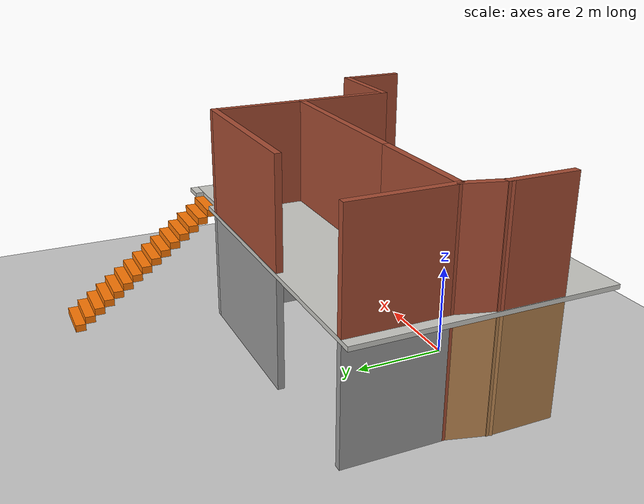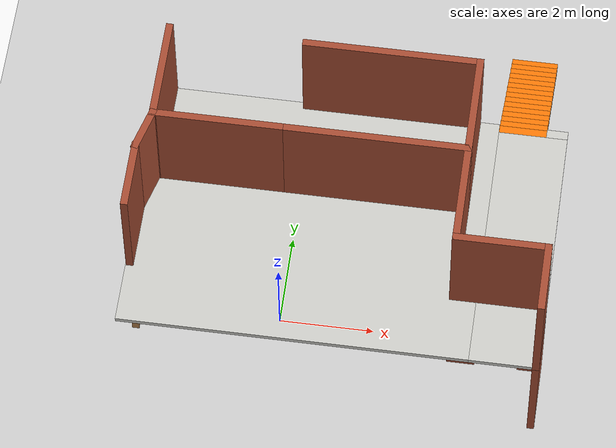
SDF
<sdf version="1.6">
 <world name="default">
  <light name="sun" type="directional">
   <pose>0 0 10 0 -0 0</pose>
   <diffuse>0.8 0.8 0.8 1</diffuse>
   <specular>0.2 0.2 0.2 1</specular>
   <attenuation>
    <range>1000</range>
    <constant>0.9</constant>
    <linear>0.01</linear>
    <quadratic>0.001</quadratic>
   </attenuation>
   <direction>-0.5 0.1 -0.9</direction>
  </light>
  <model name="ground_plane">
   <static>1</static>
   <link name="link">
    <collision name="collision">
     <geometry><plane><normal>0 0 1</normal><size>100 100</size></plane></geometry>
     <surface>
      <contact><collide_bitmask>65535</collide_bitmask></contact>
      <friction><ode><mu>100</mu><mu2>50</mu2></ode></friction>
     </surface>
    </collision>
    <visual name="visual">
     <cast_shadows>0</cast_shadows>
     <geometry><plane><normal>0 0 1</normal><size>100 100</size></plane></geometry>
     <material>
      <script><uri>file://media/materials/scripts/gazebo.material</uri><name>Gazebo/Grey</name></script>
     </material>
    </visual>
   </link>
  </model>
  <gravity>0 0 -9.8</gravity>
  <magnetic_field>6e-06 2.3e-05 -4.2e-05</magnetic_field>
  <atmosphere type="adiabatic"/>
  <physics name="default_physics" default="0" type="ode">
   <max_step_size>0.001</max_step_size>
   <real_time_factor>1</real_time_factor>
   <real_time_update_rate>1000</real_time_update_rate>
  </physics>
  <scene><ambient>0.4 0.4 0.4 1</ambient><background>0.7 0.7 0.7 1</background><shadows>1</shadows></scene>
  <audio><device>default</device></audio>
  <spherical_coordinates>
   <surface_model>EARTH_WGS84</surface_model>
   <latitude_deg>0</latitude_deg>
   <longitude_deg>0</longitude_deg>
   <elevation>0</elevation>
   <heading_deg>0</heading_deg>
  </spherical_coordinates>
  <model name="myflat">
   <pose>1.2576 2.6526 0 0 -0 0</pose>
   <link name="Floor_0">
    <pose>-0 -1.65392 2.5 0 -0 0</pose>
    <visual name="Floor_0_Visual_0">
     <pose>-0.722437 0 0.05 0 -0 0</pose>
     <geometry><box><size>7.24198 5.70822 0.1</size></box></geometry>
     <material>
      <script><uri>file://media/materials/scripts/gazebo.material</uri><name>Gazebo/CeilingTiled</name></script>
      <ambient>1 1 1 1</ambient>
     </material>
     <meta><layer>1</layer></meta>
    </visual>
    <collision name="Floor_0_Collision_0">
     <geometry><box><size>7.24198 5.70822 0.1</size></box></geometry>
     <pose>-0.722437 0 0.05 0 -0 0</pose>
    </collision>
    <visual name="Floor_0_Visual_1">
     <pose>3.62099 -0.096078 0.05 0 -0 0</pose>
     <geometry><box><size>1.44487 5.51606 0.1</size></box></geometry>
     <material>
      <script><uri>file://media/materials/scripts/gazebo.material</uri><name>Gazebo/CeilingTiled</name></script>
      <ambient>1 1 1 1</ambient>
     </material>
     <meta><layer>1</layer></meta>
    </visual>
    <collision name="Floor_0_Collision_1">
     <geometry><box><size>1.44487 5.51606 0.1</size></box></geometry>
     <pose>3.62099 -0.096078 0.05 0 -0 0</pose>
    </collision>
    <visual name="Floor_0_Visual_2">
     <pose>4.12099 2.75803 0.05 0 -0 0</pose>
     <geometry><box><size>0.444875 0.192156 0.1</size></box></geometry>
     <material>
      <script><uri>file://media/materials/scripts/gazebo.material</uri><name>Gazebo/CeilingTiled</name></script>
      <ambient>1 1 1 1</ambient>
     </material>
     <meta><layer>1</layer></meta>
    </visual>
    <collision name="Floor_0_Collision_2">
     <geometry><box><size>0.444875 0.192156 0.1</size></box></geometry>
     <pose>4.12099 2.75803 0.05 0 -0 0</pose>
    </collision>
   </link>
   <link name="Stairs_2">
    <visual name="Stairs_2_Visual_0">
     <pose>3.39855 4.39136 0.083333 0 -0 0</pose>
     <geometry><box><size>1 0.233333 0.166667</size></box></geometry>
     <material>
      <script><uri>file://media/materials/scripts/gazebo.material</uri><name>Gazebo/Grey</name></script>
      <ambient>0.996078 0.47451 0.0196078 1</ambient>
     </material>
     <meta><layer>0</layer></meta>
    </visual>
    <collision name="Stairs_2_Collision_0">
     <geometry><box><size>1 0.233333 0.166667</size></box></geometry>
     <pose>3.39855 4.39136 0.083333 0 -0 0</pose>
    </collision>
    <visual name="Stairs_2_Visual_1">
     <pose>3.39855 4.15803 0.25 0 -0 0</pose>
     <geometry><box><size>1 0.233333 0.166667</size></box></geometry>
     <material>
      <script><uri>file://media/materials/scripts/gazebo.material</uri><name>Gazebo/Grey</name></script>
      <ambient>0.996078 0.47451 0.0196078 1</ambient>
     </material>
     <meta><layer>0</layer></meta>
    </visual>
    <collision name="Stairs_2_Collision_1">
     <geometry><box><size>1 0.233333 0.166667</size></box></geometry>
     <pose>3.39855 4.15803 0.25 0 -0 0</pose>
    </collision>
    <visual name="Stairs_2_Visual_2">
     <pose>3.39855 3.9247 0.416667 0 -0 0</pose>
     <geometry><box><size>1 0.233333 0.166667</size></box></geometry>
     <material>
      <script><uri>file://media/materials/scripts/gazebo.material</uri><name>Gazebo/Grey</name></script>
      <ambient>0.996078 0.47451 0.0196078 1</ambient>
     </material>
     <meta><layer>0</layer></meta>
    </visual>
    <collision name="Stairs_2_Collision_2">
     <geometry><box><size>1 0.233333 0.166667</size></box></geometry>
     <pose>3.39855 3.9247 0.416667 0 -0 0</pose>
    </collision>
    <visual name="Stairs_2_Visual_3">
     <pose>3.39855 3.69136 0.583333 0 -0 0</pose>
     <geometry><box><size>1 0.233333 0.166667</size></box></geometry>
     <material>
      <script><uri>file://media/materials/scripts/gazebo.material</uri><name>Gazebo/Grey</name></script>
      <ambient>0.996078 0.47451 0.0196078 1</ambient>
     </material>
     <meta><layer>0</layer></meta>
    </visual>
    <collision name="Stairs_2_Collision_3">
     <geometry><box><size>1 0.233333 0.166667</size></box></geometry>
     <pose>3.39855 3.69136 0.583333 0 -0 0</pose>
    </collision>
    <visual name="Stairs_2_Visual_4">
     <pose>3.39855 3.45803 0.75 0 -0 0</pose>
     <geometry><box><size>1 0.233333 0.166667</size></box></geometry>
     <material>
      <script><uri>file://media/materials/scripts/gazebo.material</uri><name>Gazebo/Grey</name></script>
      <ambient>0.996078 0.47451 0.0196078 1</ambient>
     </material>
     <meta><layer>0</layer></meta>
    </visual>
    <collision name="Stairs_2_Collision_4">
     <geometry><box><size>1 0.233333 0.166667</size></box></geometry>
     <pose>3.39855 3.45803 0.75 0 -0 0</pose>
    </collision>
    <visual name="Stairs_2_Visual_5">
     <pose>3.39855 3.2247 0.916667 0 -0 0</pose>
     <geometry><box><size>1 0.233333 0.166667</size></box></geometry>
     <material>
      <script><uri>file://media/materials/scripts/gazebo.material</uri><name>Gazebo/Grey</name></script>
      <ambient>0.996078 0.47451 0.0196078 1</ambient>
     </material>
     <meta><layer>0</layer></meta>
    </visual>
    <collision name="Stairs_2_Collision_5">
     <geometry><box><size>1 0.233333 0.166667</size></box></geometry>
     <pose>3.39855 3.2247 0.916667 0 -0 0</pose>
    </collision>
    <visual name="Stairs_2_Visual_6">
     <pose>3.39855 2.99137 1.08333 0 -0 0</pose>
     <geometry><box><size>1 0.233333 0.166667</size></box></geometry>
     <material>
      <script><uri>file://media/materials/scripts/gazebo.material</uri><name>Gazebo/Grey</name></script>
      <ambient>0.996078 0.47451 0.0196078 1</ambient>
     </material>
     <meta><layer>0</layer></meta>
    </visual>
    <collision name="Stairs_2_Collision_6">
     <geometry><box><size>1 0.233333 0.166667</size></box></geometry>
     <pose>3.39855 2.99137 1.08333 0 -0 0</pose>
    </collision>
    <visual name="Stairs_2_Visual_7">
     <pose>3.39855 2.75803 1.25 0 -0 0</pose>
     <geometry><box><size>1 0.233333 0.166667</size></box></geometry>
     <material>
      <script><uri>file://media/materials/scripts/gazebo.material</uri><name>Gazebo/Grey</name></script>
      <ambient>0.996078 0.47451 0.0196078 1</ambient>
     </material>
     <meta><layer>0</layer></meta>
    </visual>
    <collision name="Stairs_2_Collision_7">
     <geometry><box><size>1 0.233333 0.166667</size></box></geometry>
     <pose>3.39855 2.75803 1.25 0 -0 0</pose>
    </collision>
    <visual name="Stairs_2_Visual_8">
     <pose>3.39855 2.5247 1.41667 0 -0 0</pose>
     <geometry><box><size>1 0.233333 0.166667</size></box></geometry>
     <material>
      <script><uri>file://media/materials/scripts/gazebo.material</uri><name>Gazebo/Grey</name></script>
      <ambient>0.996078 0.47451 0.0196078 1</ambient>
     </material>
     <meta><layer>0</layer></meta>
    </visual>
    <collision name="Stairs_2_Collision_8">
     <geometry><box><size>1 0.233333 0.166667</size></box></geometry>
     <pose>3.39855 2.5247 1.41667 0 -0 0</pose>
    </collision>
    <visual name="Stairs_2_Visual_9">
     <pose>3.39855 2.29136 1.58333 0 -0 0</pose>
     <geometry><box><size>1 0.233333 0.166667</size></box></geometry>
     <material>
      <script><uri>file://media/materials/scripts/gazebo.material</uri><name>Gazebo/Grey</name></script>
      <ambient>0.996078 0.47451 0.0196078 1</ambient>
     </material>
     <meta><layer>0</layer></meta>
    </visual>
    <collision name="Stairs_2_Collision_9">
     <geometry><box><size>1 0.233333 0.166667</size></box></geometry>
     <pose>3.39855 2.29136 1.58333 0 -0 0</pose>
    </collision>
    <visual name="Stairs_2_Visual_10">
     <pose>3.39855 2.05803 1.75 0 -0 0</pose>
     <geometry><box><size>1 0.233333 0.166667</size></box></geometry>
     <material>
      <script><uri>file://media/materials/scripts/gazebo.material</uri><name>Gazebo/Grey</name></script>
      <ambient>0.996078 0.47451 0.0196078 1</ambient>
     </material>
     <meta><layer>0</layer></meta>
    </visual>
    <collision name="Stairs_2_Collision_10">
     <geometry><box><size>1 0.233333 0.166667</size></box></geometry>
     <pose>3.39855 2.05803 1.75 0 -0 0</pose>
    </collision>
    <visual name="Stairs_2_Visual_11">
     <pose>3.39855 1.8247 1.91667 0 -0 0</pose>
     <geometry><box><size>1 0.233333 0.166667</size></box></geometry>
     <material>
      <script><uri>file://media/materials/scripts/gazebo.material</uri><name>Gazebo/Grey</name></script>
      <ambient>0.996078 0.47451 0.0196078 1</ambient>
     </material>
     <meta><layer>0</layer></meta>
    </visual>
    <collision name="Stairs_2_Collision_11">
     <geometry><box><size>1 0.233333 0.166667</size></box></geometry>
     <pose>3.39855 1.8247 1.91667 0 -0 0</pose>
    </collision>
    <visual name="Stairs_2_Visual_12">
     <pose>3.39855 1.59136 2.08333 0 -0 0</pose>
     <geometry><box><size>1 0.233333 0.166667</size></box></geometry>
     <material>
      <script><uri>file://media/materials/scripts/gazebo.material</uri><name>Gazebo/Grey</name></script>
      <ambient>0.996078 0.47451 0.0196078 1</ambient>
     </material>
     <meta><layer>0</layer></meta>
    </visual>
    <collision name="Stairs_2_Collision_12">
     <geometry><box><size>1 0.233333 0.166667</size></box></geometry>
     <pose>3.39855 1.59136 2.08333 0 -0 0</pose>
    </collision>
    <visual name="Stairs_2_Visual_13">
     <pose>3.39855 1.35803 2.25 0 -0 0</pose>
     <geometry><box><size>1 0.233333 0.166667</size></box></geometry>
     <material>
      <script><uri>file://media/materials/scripts/gazebo.material</uri><name>Gazebo/Grey</name></script>
      <ambient>0.996078 0.47451 0.0196078 1</ambient>
     </material>
     <meta><layer>0</layer></meta>
    </visual>
    <collision name="Stairs_2_Collision_13">
     <geometry><box><size>1 0.233333 0.166667</size></box></geometry>
     <pose>3.39855 1.35803 2.25 0 -0 0</pose>
    </collision>
    <visual name="Stairs_2_Visual_14">
     <pose>3.39855 1.1247 2.41667 0 -0 0</pose>
     <geometry><box><size>1 0.233333 0.166667</size></box></geometry>
     <material>
      <script><uri>file://media/materials/scripts/gazebo.material</uri><name>Gazebo/Grey</name></script>
      <ambient>0.996078 0.47451 0.0196078 1</ambient>
     </material>
     <meta><layer>0</layer></meta>
    </visual>
    <collision name="Stairs_2_Collision_14">
     <geometry><box><size>1 0.233333 0.166667</size></box></geometry>
     <pose>3.39855 1.1247 2.41667 0 -0 0</pose>
    </collision>
   </link>
   <link name="Wall_0">
    <collision name="Wall_0_Collision">
     <geometry><box><size>1.5 0.15 2.5</size></box></geometry>
     <pose>0 0 1.25 0 -0 0</pose>
    </collision>
    <visual name="Wall_0_Visual">
     <pose>0 0 1.25 0 -0 0</pose>
     <geometry><box><size>1.5 0.15 2.5</size></box></geometry>
     <material>
      <script><uri>file://media/materials/scripts/gazebo.material</uri><name>Gazebo/Wood</name></script>
      <ambient>1 1 1 1</ambient>
     </material>
     <meta><layer>0</layer></meta>
    </visual>
    <pose>-4.25157 -2.47907 0 0 -0 1.5708</pose>
   </link>
   <link name="Wall_1">
    <collision name="Wall_1_Collision">
     <geometry><box><size>1 0.15 2.5</size></box></geometry>
     <pose>0 0 1.25 0 -0 0</pose>
    </collision>
    <visual name="Wall_1_Visual">
     <pose>0 0 1.25 0 -0 0</pose>
     <geometry><box><size>1 0.15 2.5</size></box></geometry>
     <material>
      <script><uri>file://media/materials/scripts/gazebo.material</uri><name>Gazebo/Wood</name></script>
      <ambient>1 1 1 1</ambient>
     </material>
     <meta><layer>0</layer></meta>
    </visual>
    <pose>-4.14157 -1.39355 0 0 -0 1.309</pose>
   </link>
   <link name="Wall_11">
    <collision name="Wall_11_Collision">
     <geometry><box><size>2.25805 0.15 2.5</size></box></geometry>
     <pose>0 0 1.25 0 -0 0</pose>
    </collision>
    <visual name="Wall_11_Visual">
     <pose>0 0 1.25 0 -0 0</pose>
     <geometry><box><size>2.25805 0.15 2.5</size></box></geometry>
     <material>
      <script><uri>file://media/materials/scripts/gazebo.material</uri><name>Gazebo/Grey</name></script>
      <ambient>1 1 1 1</ambient>
     </material>
     <meta><layer>0</layer></meta>
    </visual>
    <pose>-4.02905 0.070988 0 0 -0 -1.57319</pose>
   </link>
   <link name="Wall_13">
    <collision name="Wall_13_Collision">
     <geometry><box><size>1.5 0.15 2.5</size></box></geometry>
     <pose>0 0 1.25 0 -0 0</pose>
    </collision>
    <visual name="Wall_13_Visual">
     <pose>0 0 1.25 0 -0 0</pose>
     <geometry><box><size>1.5 0.15 2.5</size></box></geometry>
     <material>
      <script><uri>file://media/materials/scripts/gazebo.material</uri><name>Gazebo/Bricks</name></script>
      <ambient>1 1 1 1</ambient>
     </material>
     <meta><layer>1</layer></meta>
    </visual>
    <pose>-4.25157 -2.47907 2.5 0 -0 1.5708</pose>
   </link>
   <link name="Wall_14">
    <collision name="Wall_14_Collision">
     <geometry><box><size>1 0.15 2.5</size></box></geometry>
     <pose>0 0 1.25 0 -0 0</pose>
    </collision>
    <visual name="Wall_14_Visual">
     <pose>0 0 1.25 0 -0 0</pose>
     <geometry><box><size>1 0.15 2.5</size></box></geometry>
     <material>
      <script><uri>file://media/materials/scripts/gazebo.material</uri><name>Gazebo/Bricks</name></script>
      <ambient>1 1 1 1</ambient>
     </material>
     <meta><layer>1</layer></meta>
    </visual>
    <pose>-4.14157 -1.39355 2.5 0 -0 1.309</pose>
   </link>
   <link name="Wall_15">
    <collision name="Wall_15_Collision">
     <geometry><box><size>2.75 0.15 2.5</size></box></geometry>
     <pose>0 0 1.25 0 -0 0</pose>
    </collision>
    <visual name="Wall_15_Visual">
     <pose>0 0 1.25 0 -0 0</pose>
     <geometry><box><size>2.75 0.15 2.5</size></box></geometry>
     <material>
      <script><uri>file://media/materials/scripts/gazebo.material</uri><name>Gazebo/Bricks</name></script>
      <ambient>1 1 1 1</ambient>
     </material>
     <meta><layer>1</layer></meta>
    </visual>
    <pose>-2.73157 -0.983031 2.5 0 -0 0</pose>
   </link>
   <link name="Wall_16">
    <collision name="Wall_16_Collision">
     <geometry><box><size>4 0.15 2.5</size></box></geometry>
     <pose>0 0 1.25 0 -0 0</pose>
    </collision>
    <visual name="Wall_16_Visual">
     <pose>0 0 1.25 0 -0 0</pose>
     <geometry><box><size>4 0.15 2.5</size></box></geometry>
     <material>
      <script><uri>file://media/materials/scripts/gazebo.material</uri><name>Gazebo/Bricks</name></script>
      <ambient>1 1 1 1</ambient>
     </material>
     <meta><layer>1</layer></meta>
    </visual>
    <pose>0.493426 -0.983031 2.5 0 -0 0</pose>
   </link>
   <link name="Wall_17">
    <collision name="Wall_17_Collision">
     <geometry><box><size>2.25 0.15 2.5</size></box></geometry>
     <pose>0 0 1.25 0 -0 0</pose>
    </collision>
    <visual name="Wall_17_Visual">
     <pose>0 0 1.25 0 -0 0</pose>
     <geometry><box><size>2.25 0.15 2.5</size></box></geometry>
     <material>
      <script><uri>file://media/materials/scripts/gazebo.material</uri><name>Gazebo/Bricks</name></script>
      <ambient>1 1 1 1</ambient>
     </material>
     <meta><layer>1</layer></meta>
    </visual>
    <pose>2.41843 -2.03303 2.5 0 -0 -1.5708</pose>
   </link>
   <link name="Wall_18">
    <collision name="Wall_18_Collision">
     <geometry><box><size>2 0.15 2.5</size></box></geometry>
     <pose>0 0 1.25 0 -0 0</pose>
    </collision>
    <visual name="Wall_18_Visual">
     <pose>0 0 1.25 0 -0 0</pose>
     <geometry><box><size>2 0.15 2.5</size></box></geometry>
     <material>
      <script><uri>file://media/materials/scripts/gazebo.material</uri><name>Gazebo/Bricks</name></script>
      <ambient>1 1 1 1</ambient>
     </material>
     <meta><layer>1</layer></meta>
    </visual>
    <pose>3.34343 -3.08303 2.5 0 -0 0</pose>
   </link>
   <link name="Wall_19">
    <collision name="Wall_19_Collision">
     <geometry><box><size>1.5 0.15 2.5</size></box></geometry>
     <pose>0 0 1.25 0 -0 0</pose>
    </collision>
    <visual name="Wall_19_Visual">
     <pose>0 0 1.25 0 -0 0</pose>
     <geometry><box><size>1.5 0.15 2.5</size></box></geometry>
     <material>
      <script><uri>file://media/materials/scripts/gazebo.material</uri><name>Gazebo/Bricks</name></script>
      <ambient>1 1 1 1</ambient>
     </material>
     <meta><layer>1</layer></meta>
    </visual>
    <pose>4.26843 -3.75803 2.5 0 -0 -1.5708</pose>
   </link>
   <link name="Wall_2">
    <collision name="Wall_2_Collision">
     <geometry><box><size>2.75 0.15 2.5</size></box></geometry>
     <pose>0 0 1.25 0 -0 0</pose>
    </collision>
    <visual name="Wall_2_Visual">
     <pose>0 0 1.25 0 -0 0</pose>
     <geometry><box><size>2.75 0.15 2.5</size></box></geometry>
     <material>
      <script><uri>file://media/materials/scripts/gazebo.material</uri><name>Gazebo/Bricks</name></script>
      <ambient>1 1 1 1</ambient>
     </material>
     <meta><layer>0</layer></meta>
    </visual>
    <pose>-2.73157 -0.983031 0 0 -0 0</pose>
   </link>
   <link name="Wall_20">
    <collision name="Wall_20_Collision">
     <geometry><box><size>2.25 0.15 2.5</size></box></geometry>
     <pose>0 0 1.25 0 -0 0</pose>
    </collision>
    <visual name="Wall_20_Visual">
     <pose>0 0 1.25 0 -0 0</pose>
     <geometry><box><size>2.25 0.15 2.5</size></box></geometry>
     <material>
      <script><uri>file://media/materials/scripts/gazebo.material</uri><name>Gazebo/Bricks</name></script>
      <ambient>1 1 1 1</ambient>
     </material>
     <meta><layer>1</layer></meta>
    </visual>
    <pose>2.41843 0.066969 2.5 0 -0 1.5708</pose>
   </link>
   <link name="Wall_21">
    <collision name="Wall_21_Collision">
     <geometry><box><size>3.75 0.15 2.5</size></box></geometry>
     <pose>0 0 1.25 0 -0 0</pose>
    </collision>
    <visual name="Wall_21_Visual">
     <pose>0 0 1.25 0 -0 0</pose>
     <geometry><box><size>3.75 0.15 2.5</size></box></geometry>
     <material>
      <script><uri>file://media/materials/scripts/gazebo.material</uri><name>Gazebo/Bricks</name></script>
      <ambient>1 1 1 1</ambient>
     </material>
     <meta><layer>1</layer></meta>
    </visual>
    <pose>0.618426 1.11697 2.5 0 -0 3.14159</pose>
   </link>
   <link name="Wall_22">
    <collision name="Wall_22_Collision">
     <geometry><box><size>2.25805 0.15 2.5</size></box></geometry>
     <pose>0 0 1.25 0 -0 0</pose>
    </collision>
    <visual name="Wall_22_Visual">
     <pose>0 0 1.25 0 -0 0</pose>
     <geometry><box><size>2.25805 0.15 2.5</size></box></geometry>
     <material>
      <script><uri>file://media/materials/scripts/gazebo.material</uri><name>Gazebo/Bricks</name></script>
      <ambient>1 1 1 1</ambient>
     </material>
     <meta><layer>1</layer></meta>
    </visual>
    <pose>-4.02905 0.070988 2.5 0 -0 -1.57319</pose>
   </link>
   <link name="Wall_3">
    <pose>0.493426 -0.983031 0 0 -0 0</pose>
    <visual name="Wall_3_Visual_0">
     <pose>-1.11864 0 1.25 0 -0 0</pose>
     <geometry><box><size>1.76272 0.15 2.5</size></box></geometry>
     <material>
      <script><uri>file://media/materials/scripts/gazebo.material</uri><name>Gazebo/Bricks</name></script>
      <ambient>1 1 1 1</ambient>
     </material>
     <meta><layer>0</layer></meta>
    </visual>
    <collision name="Wall_3_Collision_0">
     <geometry><box><size>1.76272 0.15 2.5</size></box></geometry>
     <pose>-1.11864 0 1.25 0 -0 0</pose>
    </collision>
    <visual name="Wall_3_Visual_1">
     <pose>0.881358 0 0.25 0 -0 0</pose>
     <geometry><box><size>2.23728 0.15 0.5</size></box></geometry>
     <material>
      <script><uri>file://media/materials/scripts/gazebo.material</uri><name>Gazebo/Bricks</name></script>
      <ambient>1 1 1 1</ambient>
     </material>
     <meta><layer>0</layer></meta>
    </visual>
    <collision name="Wall_3_Collision_1">
     <geometry><box><size>2.23728 0.15 0.5</size></box></geometry>
     <pose>0.881358 0 0.25 0 -0 0</pose>
    </collision>
    <visual name="Wall_3_Visual_2">
     <pose>1.28136 0 1.5 0 -0 0</pose>
     <geometry><box><size>1.43728 0.15 2</size></box></geometry>
     <material>
      <script><uri>file://media/materials/scripts/gazebo.material</uri><name>Gazebo/Bricks</name></script>
      <ambient>1 1 1 1</ambient>
     </material>
     <meta><layer>0</layer></meta>
    </visual>
    <collision name="Wall_3_Collision_2">
     <geometry><box><size>1.43728 0.15 2</size></box></geometry>
     <pose>1.28136 0 1.5 0 -0 0</pose>
    </collision>
    <visual name="Wall_3_Visual_3">
     <pose>0.162715 0 1.9 0 -0 0</pose>
     <geometry><box><size>0.8 0.15 1.2</size></box></geometry>
     <material>
      <script><uri>file://media/materials/scripts/gazebo.material</uri><name>Gazebo/Bricks</name></script>
      <ambient>1 1 1 1</ambient>
     </material>
     <meta><layer>0</layer></meta>
    </visual>
    <collision name="Wall_3_Collision_3">
     <geometry><box><size>0.8 0.15 1.2</size></box></geometry>
     <pose>0.162715 0 1.9 0 -0 0</pose>
    </collision>
   </link>
   <link name="Wall_4">
    <collision name="Wall_4_Collision">
     <geometry><box><size>2.25 0.15 2.5</size></box></geometry>
     <pose>0 0 1.25 0 -0 0</pose>
    </collision>
    <visual name="Wall_4_Visual">
     <pose>0 0 1.25 0 -0 0</pose>
     <geometry><box><size>2.25 0.15 2.5</size></box></geometry>
     <material>
      <script><uri>file://media/materials/scripts/gazebo.material</uri><name>Gazebo/Bricks</name></script>
      <ambient>1 1 1 1</ambient>
     </material>
     <meta><layer>0</layer></meta>
    </visual>
    <pose>2.41843 -2.03303 0 0 -0 -1.5708</pose>
   </link>
   <link name="Wall_5">
    <pose>3.34343 -3.08303 0 0 -0 0</pose>
    <visual name="Wall_5_Visual_0">
     <pose>-0.700919 0 1.25 0 -0 0</pose>
     <geometry><box><size>0.598161 0.15 2.5</size></box></geometry>
     <material>
      <script><uri>file://media/materials/scripts/gazebo.material</uri><name>Gazebo/Bricks</name></script>
      <ambient>1 1 1 1</ambient>
     </material>
     <meta><layer>0</layer></meta>
    </visual>
    <collision name="Wall_5_Collision_0">
     <geometry><box><size>0.598161 0.15 2.5</size></box></geometry>
     <pose>-0.700919 0 1.25 0 -0 0</pose>
    </collision>
    <visual name="Wall_5_Visual_1">
     <pose>0.749081 0 1.25 0 -0 0</pose>
     <geometry><box><size>0.501839 0.15 2.5</size></box></geometry>
     <material>
      <script><uri>file://media/materials/scripts/gazebo.material</uri><name>Gazebo/Bricks</name></script>
      <ambient>1 1 1 1</ambient>
     </material>
     <meta><layer>0</layer></meta>
    </visual>
    <collision name="Wall_5_Collision_1">
     <geometry><box><size>0.501839 0.15 2.5</size></box></geometry>
     <pose>0.749081 0 1.25 0 -0 0</pose>
    </collision>
    <visual name="Wall_5_Visual_2">
     <pose>0.048161 0 2.25 0 -0 0</pose>
     <geometry><box><size>0.9 0.15 0.5</size></box></geometry>
     <material>
      <script><uri>file://media/materials/scripts/gazebo.material</uri><name>Gazebo/Bricks</name></script>
      <ambient>1 1 1 1</ambient>
     </material>
     <meta><layer>0</layer></meta>
    </visual>
    <collision name="Wall_5_Collision_2">
     <geometry><box><size>0.9 0.15 0.5</size></box></geometry>
     <pose>0.048161 0 2.25 0 -0 0</pose>
    </collision>
   </link>
   <link name="Wall_6">
    <collision name="Wall_6_Collision">
     <geometry><box><size>1.5 0.15 2.5</size></box></geometry>
     <pose>0 0 1.25 0 -0 0</pose>
    </collision>
    <visual name="Wall_6_Visual">
     <pose>0 0 1.25 0 -0 0</pose>
     <geometry><box><size>1.5 0.15 2.5</size></box></geometry>
     <material>
      <script><uri>file://media/materials/scripts/gazebo.material</uri><name>Gazebo/Bricks</name></script>
      <ambient>1 1 1 1</ambient>
     </material>
     <meta><layer>0</layer></meta>
    </visual>
    <pose>4.26843 -3.75803 0 0 -0 -1.5708</pose>
   </link>
   <link name="Wall_8">
    <collision name="Wall_8_Collision">
     <geometry><box><size>2.25 0.15 2.5</size></box></geometry>
     <pose>0 0 1.25 0 -0 0</pose>
    </collision>
    <visual name="Wall_8_Visual">
     <pose>0 0 1.25 0 -0 0</pose>
     <geometry><box><size>2.25 0.15 2.5</size></box></geometry>
     <material>
      <script><uri>file://media/materials/scripts/gazebo.material</uri><name>Gazebo/Grey</name></script>
      <ambient>1 1 1 1</ambient>
     </material>
     <meta><layer>0</layer></meta>
    </visual>
    <pose>2.41843 0.066969 0 0 -0 1.5708</pose>
   </link>
   <link name="Wall_9">
    <collision name="Wall_9_Collision">
     <geometry><box><size>3.75 0.15 2.5</size></box></geometry>
     <pose>0 0 1.25 0 -0 0</pose>
    </collision>
    <visual name="Wall_9_Visual">
     <pose>0 0 1.25 0 -0 0</pose>
     <geometry><box><size>3.75 0.15 2.5</size></box></geometry>
     <material>
      <script><uri>file://media/materials/scripts/gazebo.material</uri><name>Gazebo/Grey</name></script>
      <ambient>1 1 1 1</ambient>
     </material>
     <meta><layer>0</layer></meta>
    </visual>
    <pose>0.618426 1.11697 0 0 -0 3.14159</pose>
   </link>
   <link name="Window_1">
    <collision name="Window_1_Collision">
     <geometry><box><size>0.8 0.17 0.8</size></box></geometry>
     <pose>0 0 0.4 0 -0 0</pose>
    </collision>
    <visual name="Window_1_Visual">
     <pose>0 0 0.4 0 -0 0</pose>
     <geometry><box><size>0.8 0.17 0.8</size></box></geometry>
     <material>
      <script><uri>file://media/materials/scripts/gazebo.material</uri><name>Gazebo/Grey</name></script>
     </material>
    </visual>
    <pose>-1.51612 -1.04214 0.5 0 -0 0</pose>
   </link>
   <static>1</static>
  </model>
 </world>
</sdf>
